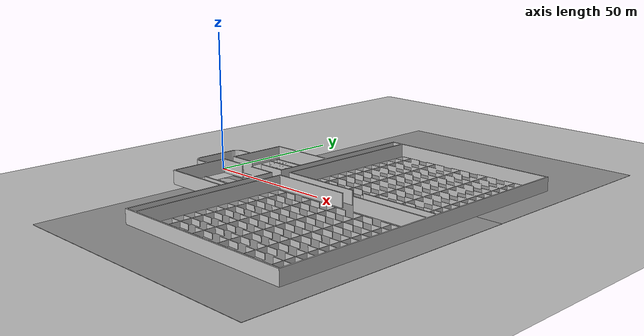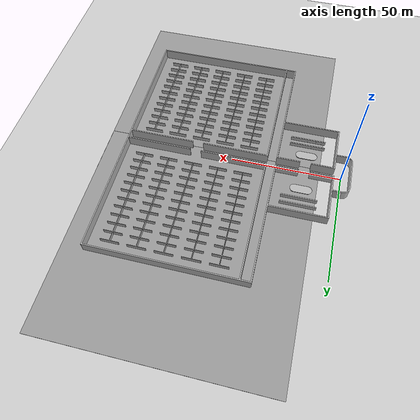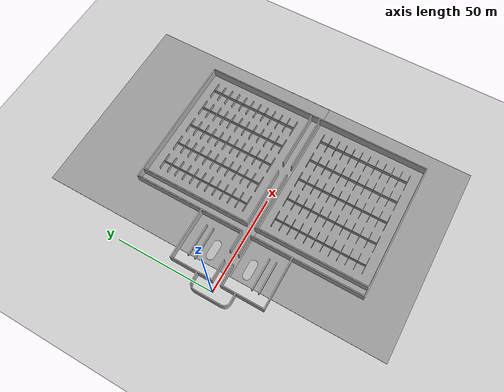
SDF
<sdf version="1.7">
 <world name="default">
  <light name="sun" type="directional">
   <pose>0 0 10 0 -0 0</pose>
   <diffuse>0.8 0.8 0.8 1</diffuse>
   <specular>0.2 0.2 0.2 1</specular>
   <attenuation>
    <range>1000</range>
    <constant>0.9</constant>
    <linear>0.01</linear>
    <quadratic>0.001</quadratic>
   </attenuation>
   <direction>-0.5 0.1 -0.9</direction>
   <spot><inner_angle>0</inner_angle><outer_angle>0</outer_angle><falloff>0</falloff></spot>
  </light>
  <plugin name="ros_interface_plugin" filename="librotors_gazebo_ros_interface_plugin.so"/>
  <model name="ground_plane">
   <static>1</static>
   <link name="link">
    <collision name="collision">
     <geometry><plane><normal>0 0 1</normal><size>100 100</size></plane></geometry>
     <surface><friction><ode><mu>100</mu><mu2>50</mu2></ode></friction></surface>
    </collision>
    <visual name="visual">
     <cast_shadows>0</cast_shadows>
     <geometry><plane><normal>0 0 1</normal><size>100 100</size></plane></geometry>
     <material>
      <script><uri>file://media/materials/scripts/gazebo.material</uri><name>Gazebo/Grey</name></script>
     </material>
    </visual>
   </link>
  </model>
  <gravity>0 0 -9.8</gravity>
  <magnetic_field>6e-06 2.3e-05 -4.2e-05</magnetic_field>
  <atmosphere type="adiabatic"/>
  <physics type="ode">
   <max_step_size>0.001</max_step_size>
   <real_time_factor>1</real_time_factor>
   <real_time_update_rate>1000</real_time_update_rate>
  </physics>
  <scene><ambient>0.4 0.4 0.4 1</ambient><background>0.7 0.7 0.7 1</background><shadows>1</shadows></scene>
  <spherical_coordinates>
   <surface_model>EARTH_WGS84</surface_model>
   <latitude_deg>0</latitude_deg>
   <longitude_deg>0</longitude_deg>
   <elevation>0</elevation>
   <heading_deg>0</heading_deg>
  </spherical_coordinates>
  <model name="10_22room2">
   <link name="base_link">
    <inertial>
     <pose>52.4121 0.123955 2.03453 0 -0 0</pose>
     <mass>2.77842e+06</mass>
     <inertia>
      <ixx>2.36921e+09</ixx>
      <ixy>-5.02406e+06</ixy>
      <ixz>9.21465e+06</ixz>
      <iyy>2.3828e+09</iyy>
      <iyz>356293</iyz>
      <izz>4.74063e+09</izz>
     </inertia>
    </inertial>
    <collision name="base_link_collision">
     <geometry>
      <mesh><scale>1 1 1</scale><uri>../../../sim_env/10_22room2/meshes/base_link.STL</uri></mesh>
     </geometry>
    </collision>
    <collision name="base_link_fixed_joint_lump__fixed1_collision_1">
     <geometry><mesh><scale>1 1 1</scale><uri>../../../sim_env/10_22room2/meshes/fixed1.STL</uri></mesh></geometry>
    </collision>
    <collision name="base_link_fixed_joint_lump__fixed2_collision_2">
     <geometry><mesh><scale>1 1 1</scale><uri>../../../sim_env/10_22room2/meshes/fixed2.STL</uri></mesh></geometry>
    </collision>
    <visual name="base_link_visual">
     <geometry>
      <mesh><scale>1 1 1</scale><uri>../../../sim_env/10_22room2/meshes/base_link.STL</uri></mesh>
     </geometry>
    </visual>
    <visual name="base_link_fixed_joint_lump__fixed1_visual_1">
     <geometry><mesh><scale>1 1 1</scale><uri>../../../sim_env/10_22room2/meshes/fixed1.STL</uri></mesh></geometry>
    </visual>
    <visual name="base_link_fixed_joint_lump__fixed2_visual_2">
     <geometry><mesh><scale>1 1 1</scale><uri>../../../sim_env/10_22room2/meshes/fixed2.STL</uri></mesh></geometry>
    </visual>
   </link>
   <pose>-0 0 -1e-06 0 -0 0</pose>
  </model>
  <model name="ground_plane_0">
   <static>1</static>
   <link name="link">
    <collision name="collision">
     <geometry><plane><normal>0 0 1</normal><size>100 100</size></plane></geometry>
     <surface>
      <contact><collide_bitmask>65535</collide_bitmask></contact>
      <friction><ode><mu>100</mu><mu2>50</mu2></ode></friction>
     </surface>
    </collision>
    <visual name="visual">
     <cast_shadows>0</cast_shadows>
     <geometry><plane><normal>0 0 1</normal><size>100 100</size></plane></geometry>
     <material>
      <script><uri>file://media/materials/scripts/gazebo.material</uri><name>Gazebo/Grey</name></script>
     </material>
    </visual>
   </link>
   <pose>59.7776 46.7678 0 0 -0 0</pose>
  </model>
  <model name="ground_plane_1">
   <static>1</static>
   <link name="link">
    <collision name="collision">
     <geometry><plane><normal>0 0 1</normal><size>100 100</size></plane></geometry>
     <surface>
      <contact><collide_bitmask>65535</collide_bitmask></contact>
      <friction><ode><mu>100</mu><mu2>50</mu2></ode></friction>
     </surface>
    </collision>
    <visual name="visual">
     <cast_shadows>0</cast_shadows>
     <geometry><plane><normal>0 0 1</normal><size>100 100</size></plane></geometry>
     <material>
      <script><uri>file://media/materials/scripts/gazebo.material</uri><name>Gazebo/Grey</name></script>
     </material>
    </visual>
   </link>
   <pose>59.8314 -29.3703 0 0 -0 0</pose>
  </model>
 </world>
</sdf>
